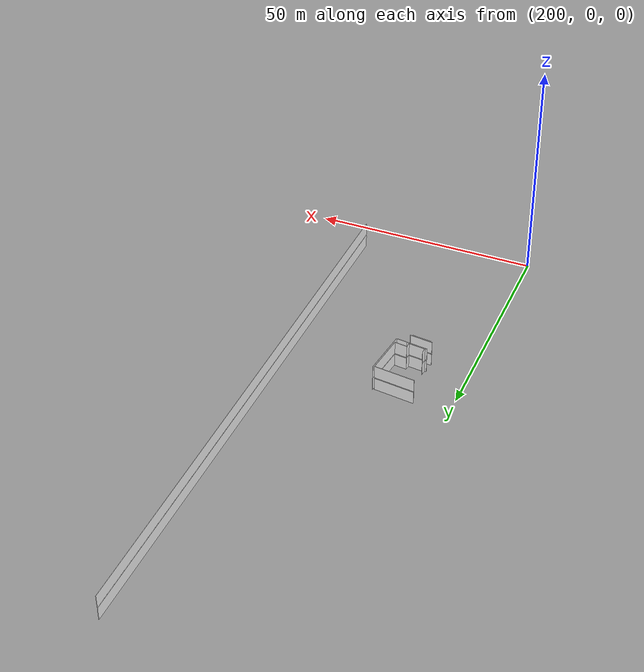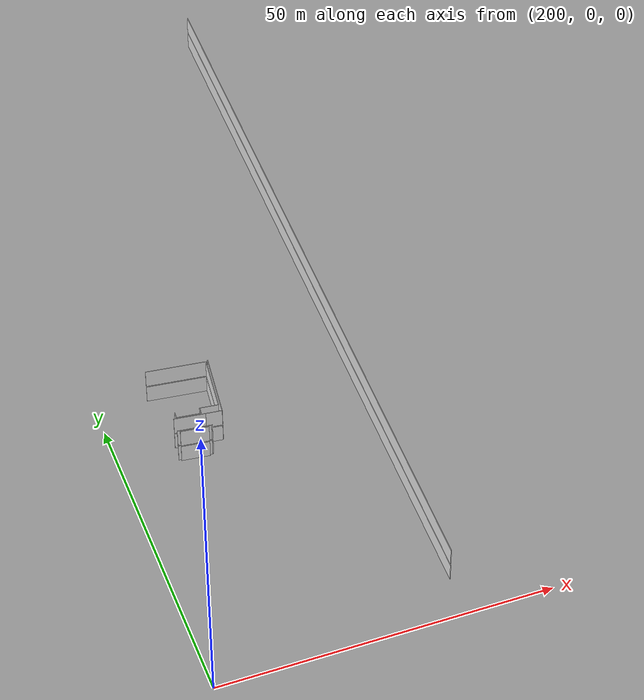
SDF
<sdf version="1.6">
 <world name="default">
  <model name="wall_213.7_40.6_0.0_link">
   <static>true</static>
   <pose>213.66500000000815 40.610000000102445 1.5 0 0 3.00904112114061</pose>
   <link name="link">
    <visual name="visual">
     <geometry><box><size>0.15132745947205906 0.1 3</size></box></geometry>
     <material>
      <script><uri>file://media/materials/scripts/gazebo.material</uri><name>Gazebo/White</name></script>
     </material>
    </visual>
   </link>
  </model>
  <model name="wall_211.1_40.9_0.0_link">
   <static>true</static>
   <pose>211.09500000000116 40.920000000158325 1.5 0 0 3.0219266671082443</pose>
   <link name="link">
    <visual name="visual">
     <geometry><box><size>5.025942697703559 0.1 3</size></box></geometry>
     <material>
      <script><uri>file://media/materials/scripts/gazebo.material</uri><name>Gazebo/White</name></script>
     </material>
    </visual>
   </link>
  </model>
  <model name="wall_211.2_43.4_0.0_link">
   <static>true</static>
   <pose>211.20000000001164 43.35499999998137 1.5 0 0 -0.120180742830446</pose>
   <link name="link">
    <visual name="visual">
     <geometry><box><size>4.75429279704942 0.1 3</size></box></geometry>
     <material>
      <script><uri>file://media/materials/scripts/gazebo.material</uri><name>Gazebo/White</name></script>
     </material>
    </visual>
   </link>
  </model>
  <model name="wall_214.8_42.9_0.0_link">
   <static>true</static>
   <pose>214.75500000000466 42.92999999993481 1.5 0 0 -0.11662318977348207</pose>
   <link name="link">
    <visual name="visual">
     <geometry><box><size>2.406345777304674 0.1 3</size></box></geometry>
     <material>
      <script><uri>file://media/materials/scripts/gazebo.material</uri><name>Gazebo/White</name></script>
     </material>
    </visual>
   </link>
  </model>
  <model name="wall_216.4_48.5_0.0_link">
   <static>true</static>
   <pose>216.36000000001513 48.51000000000931 1.5 0 0 -1.6918235466011338</pose>
   <link name="link">
    <visual name="visual">
     <geometry><box><size>8.945434590131466 0.1 3</size></box></geometry>
     <material>
      <script><uri>file://media/materials/scripts/gazebo.material</uri><name>Gazebo/White</name></script>
     </material>
    </visual>
   </link>
  </model>
  <model name="wall_214.4_44.2_0.0_link">
   <static>true</static>
   <pose>214.44000000000233 44.234999999869615 1.5 0 0 3.0225923601807967</pose>
   <link name="link">
    <visual name="visual">
     <geometry><box><size>2.7796582523937334 0.1 3</size></box></geometry>
     <material>
      <script><uri>file://media/materials/scripts/gazebo.material</uri><name>Gazebo/White</name></script>
     </material>
    </visual>
   </link>
  </model>
  <model name="wall_213.0_43.9_0.0_link">
   <static>true</static>
   <pose>212.9899999999907 43.86999999987893 1.5 0 0 -1.7021117657840947</pose>
   <link name="link">
    <visual name="visual">
     <geometry><box><size>1.0692053124271204 0.1 3</size></box></geometry>
     <material>
      <script><uri>file://media/materials/scripts/gazebo.material</uri><name>Gazebo/White</name></script>
     </material>
    </visual>
   </link>
  </model>
  <model name="wall_211.1_43.6_0.0_link">
   <static>true</static>
   <pose>211.0899999999965 43.55999999982305 1.5 0 0 3.021948256785304</pose>
   <link name="link">
    <visual name="visual">
     <geometry><box><size>3.6863532114765336 0.1 3</size></box></geometry>
     <material>
      <script><uri>file://media/materials/scripts/gazebo.material</uri><name>Gazebo/White</name></script>
     </material>
    </visual>
   </link>
  </model>
  <model name="wall_209.3_44.3_0.0_link">
   <static>true</static>
   <pose>209.32500000001164 44.30999999982305 1.5 0 0 1.4487642084439392</pose>
   <link name="link">
    <visual name="visual">
     <geometry><box><size>1.0679419460437327 0.1 3</size></box></geometry>
     <material>
      <script><uri>file://media/materials/scripts/gazebo.material</uri><name>Gazebo/White</name></script>
     </material>
    </visual>
   </link>
  </model>
  <model name="wall_212.4_53.5_0.0_link">
   <static>true</static>
   <pose>212.3850000000093 53.48999999999069 1.5 0 0 -0.1190358957321744</pose>
   <link name="link">
    <visual name="visual">
     <geometry><box><size>9.094355392201235 0.1 3</size></box></geometry>
     <material>
      <script><uri>file://media/materials/scripts/gazebo.material</uri><name>Gazebo/White</name></script>
     </material>
    </visual>
   </link>
  </model>
  <model name="wall_211.1_40.7_0.0_link">
   <static>true</static>
   <pose>211.0799999999872 40.72000000020489 1.5 0 0 -0.11793360002921387</pose>
   <link name="link">
    <visual name="visual">
     <geometry><box><size>4.2495176197134965 0.1 3</size></box></geometry>
     <material>
      <script><uri>file://media/materials/scripts/gazebo.material</uri><name>Gazebo/White</name></script>
     </material>
    </visual>
   </link>
  </model>
  <model name="wall_216.6_48.0_0.0_link">
   <static>true</static>
   <pose>216.5800000000163 47.98999999999069 1.5 0 0 1.4502300898691078</pose>
   <link name="link">
    <visual name="visual">
     <geometry><box><size>10.476048873410543 0.1 3</size></box></geometry>
     <material>
      <script><uri>file://media/materials/scripts/gazebo.material</uri><name>Gazebo/White</name></script>
     </material>
    </visual>
   </link>
  </model>
  <model name="wall_238.2_68.0_0.0_link">
   <static>true</static>
   <pose>238.24500000002445 67.96999999997206 1.5 0 0 -1.5886225073631255</pose>
   <link name="link">
    <visual name="visual">
     <geometry><box><size>122.85952018495679 0.1 3</size></box></geometry>
     <material>
      <script><uri>file://media/materials/scripts/gazebo.material</uri><name>Gazebo/White</name></script>
     </material>
    </visual>
   </link>
  </model>
  <model name="wall_213.7_40.6_3.2_link">
   <static>true</static>
   <pose>213.66500000000815 40.610000000102445 4.7 0 0 3.00904112114061</pose>
   <link name="link">
    <visual name="visual">
     <geometry><box><size>0.15132745947205906 0.1 3</size></box></geometry>
     <material>
      <script><uri>file://media/materials/scripts/gazebo.material</uri><name>Gazebo/White</name></script>
     </material>
    </visual>
   </link>
  </model>
  <model name="wall_211.1_40.9_3.2_link">
   <static>true</static>
   <pose>211.09500000000116 40.920000000158325 4.7 0 0 3.0219266671082443</pose>
   <link name="link">
    <visual name="visual">
     <geometry><box><size>5.025942697703559 0.1 3</size></box></geometry>
     <material>
      <script><uri>file://media/materials/scripts/gazebo.material</uri><name>Gazebo/White</name></script>
     </material>
    </visual>
   </link>
  </model>
  <model name="wall_211.2_43.4_3.2_link">
   <static>true</static>
   <pose>211.20000000001164 43.35499999998137 4.7 0 0 -0.120180742830446</pose>
   <link name="link">
    <visual name="visual">
     <geometry><box><size>4.75429279704942 0.1 3</size></box></geometry>
     <material>
      <script><uri>file://media/materials/scripts/gazebo.material</uri><name>Gazebo/White</name></script>
     </material>
    </visual>
   </link>
  </model>
  <model name="wall_214.8_42.9_3.2_link">
   <static>true</static>
   <pose>214.75500000000466 42.92999999993481 4.7 0 0 -0.11662318977348207</pose>
   <link name="link">
    <visual name="visual">
     <geometry><box><size>2.406345777304674 0.1 3</size></box></geometry>
     <material>
      <script><uri>file://media/materials/scripts/gazebo.material</uri><name>Gazebo/White</name></script>
     </material>
    </visual>
   </link>
  </model>
  <model name="wall_216.4_48.5_3.2_link">
   <static>true</static>
   <pose>216.36000000001513 48.51000000000931 4.7 0 0 -1.6918235466011338</pose>
   <link name="link">
    <visual name="visual">
     <geometry><box><size>8.945434590131466 0.1 3</size></box></geometry>
     <material>
      <script><uri>file://media/materials/scripts/gazebo.material</uri><name>Gazebo/White</name></script>
     </material>
    </visual>
   </link>
  </model>
  <model name="wall_214.4_44.2_3.2_link">
   <static>true</static>
   <pose>214.44000000000233 44.234999999869615 4.7 0 0 3.0225923601807967</pose>
   <link name="link">
    <visual name="visual">
     <geometry><box><size>2.7796582523937334 0.1 3</size></box></geometry>
     <material>
      <script><uri>file://media/materials/scripts/gazebo.material</uri><name>Gazebo/White</name></script>
     </material>
    </visual>
   </link>
  </model>
  <model name="wall_213.0_43.9_3.2_link">
   <static>true</static>
   <pose>212.9899999999907 43.86999999987893 4.7 0 0 -1.7021117657840947</pose>
   <link name="link">
    <visual name="visual">
     <geometry><box><size>1.0692053124271204 0.1 3</size></box></geometry>
     <material>
      <script><uri>file://media/materials/scripts/gazebo.material</uri><name>Gazebo/White</name></script>
     </material>
    </visual>
   </link>
  </model>
  <model name="wall_211.1_43.6_3.2_link">
   <static>true</static>
   <pose>211.0899999999965 43.55999999982305 4.7 0 0 3.021948256785304</pose>
   <link name="link">
    <visual name="visual">
     <geometry><box><size>3.6863532114765336 0.1 3</size></box></geometry>
     <material>
      <script><uri>file://media/materials/scripts/gazebo.material</uri><name>Gazebo/White</name></script>
     </material>
    </visual>
   </link>
  </model>
  <model name="wall_209.3_44.3_3.2_link">
   <static>true</static>
   <pose>209.32500000001164 44.30999999982305 4.7 0 0 1.4487642084439392</pose>
   <link name="link">
    <visual name="visual">
     <geometry><box><size>1.0679419460437327 0.1 3</size></box></geometry>
     <material>
      <script><uri>file://media/materials/scripts/gazebo.material</uri><name>Gazebo/White</name></script>
     </material>
    </visual>
   </link>
  </model>
  <model name="wall_212.4_53.5_3.2_link">
   <static>true</static>
   <pose>212.3850000000093 53.48999999999069 4.7 0 0 -0.1190358957321744</pose>
   <link name="link">
    <visual name="visual">
     <geometry><box><size>9.094355392201235 0.1 3</size></box></geometry>
     <material>
      <script><uri>file://media/materials/scripts/gazebo.material</uri><name>Gazebo/White</name></script>
     </material>
    </visual>
   </link>
  </model>
  <model name="wall_211.1_40.7_3.2_link">
   <static>true</static>
   <pose>211.0799999999872 40.72000000020489 4.7 0 0 -0.11793360002921387</pose>
   <link name="link">
    <visual name="visual">
     <geometry><box><size>4.2495176197134965 0.1 3</size></box></geometry>
     <material>
      <script><uri>file://media/materials/scripts/gazebo.material</uri><name>Gazebo/White</name></script>
     </material>
    </visual>
   </link>
  </model>
  <model name="wall_216.6_48.0_3.2_link">
   <static>true</static>
   <pose>216.5800000000163 47.98999999999069 4.7 0 0 1.4502300898691078</pose>
   <link name="link">
    <visual name="visual">
     <geometry><box><size>10.476048873410543 0.1 3</size></box></geometry>
     <material>
      <script><uri>file://media/materials/scripts/gazebo.material</uri><name>Gazebo/White</name></script>
     </material>
    </visual>
   </link>
  </model>
  <model name="wall_238.2_68.0_3.2_link">
   <static>true</static>
   <pose>238.24500000002445 67.96999999997206 4.7 0 0 -1.5886225073631255</pose>
   <link name="link">
    <visual name="visual">
     <geometry><box><size>122.85952018495679 0.1 3</size></box></geometry>
     <material>
      <script><uri>file://media/materials/scripts/gazebo.material</uri><name>Gazebo/White</name></script>
     </material>
    </visual>
   </link>
  </model>
 </world>
</sdf>
